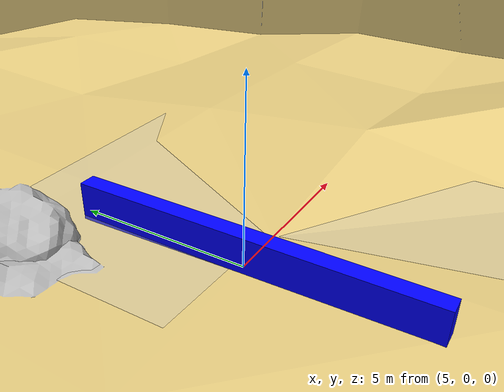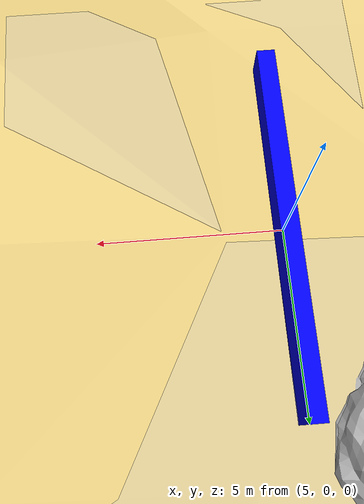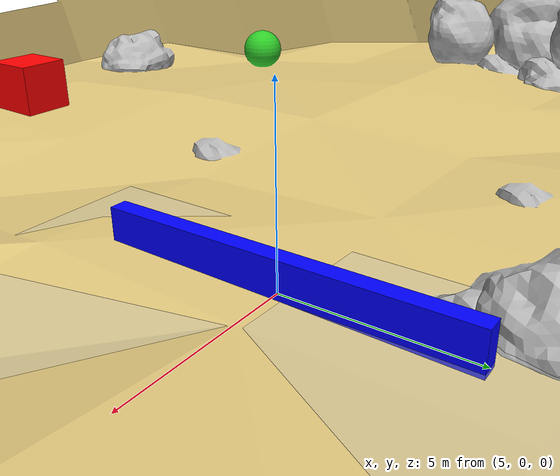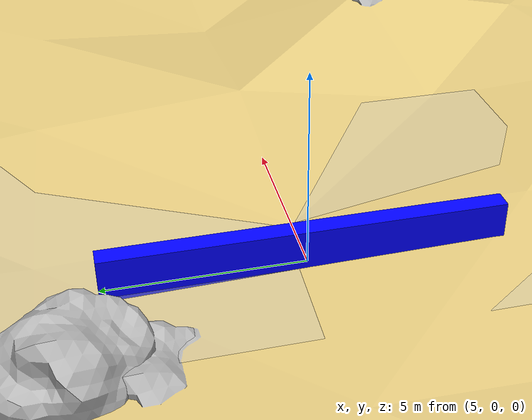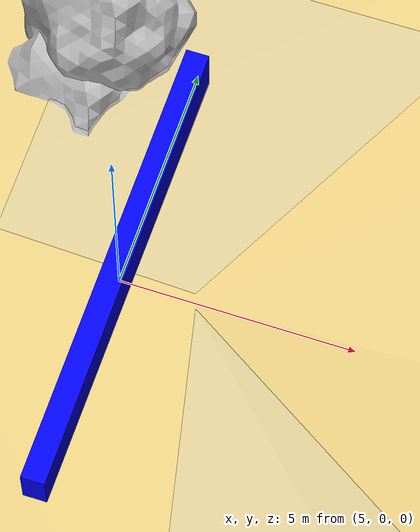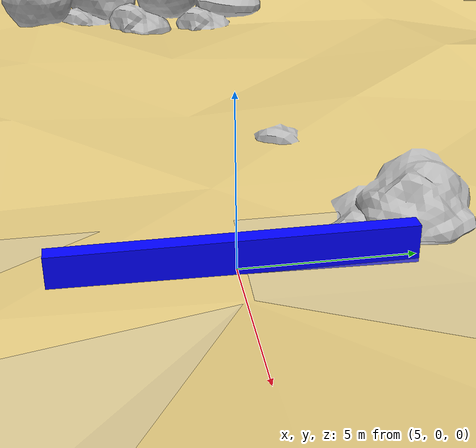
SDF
<?xml version="1.0" ?>
    <!-- Defines the root element with SDF version 1.6 -->
<sdf version="1.6">
    <!-- Starts the world definition named 'world_demo' -->
  <world name="world_demo">
    <!-- Configures the physics engine using ODE with specified settings -->
    <physics name="1ms" type="ode">
    <!-- - Sets the simulation step size to 0.001 seconds -->
      <max_step_size>0.001</max_step_size>
    <!-- - Configures the simulation to run at real-time speed -->
      <real_time_factor>1.0</real_time_factor>
    </physics>
    <plugin
      filename="gz-sim-physics-system"
      name="gz::sim::systems::Physics">
    </plugin>
    <plugin
      filename="gz-sim-user-commands-system"
      name="gz::sim::systems::UserCommands">
    </plugin>
    <plugin
      filename="gz-sim-scene-broadcaster-system"
      name="gz::sim::systems::SceneBroadcaster">
    </plugin>
    <plugin
      filename="gz-sim-sensors-system"
      name="gz::sim::systems::Sensors">
    <!-- - Specifies the rendering engine as OGRE2 for the sensors plugin -->
      <render_engine>ogre2</render_engine>
    </plugin>
    <plugin filename="gz-sim-imu-system"
        name="gz::sim::systems::Imu">
    </plugin>

    <!--light-->
    <!-- Adds a light source of type directional -->
    <light type="directional" name="sun">
    <!-- - Enables or disables shadow casting -->
      <cast_shadows>true</cast_shadows>
    <!-- - Defines the position and orientation of the light in the world -->
      <pose>0 0 10 0 0 0</pose>
    <!-- - Sets the light's diffuse color and intensity -->
      <diffuse>0.8 0.8 0.8 1</diffuse>
    <!-- - Sets the light's specular color and intensity -->
      <specular>0.2 0.2 0.2 1</specular>
      <attenuation>
        <range>1000</range>
        <constant>0.9</constant>
        <linear>0.01</linear>
        <quadratic>0.001</quadratic>
      </attenuation>
      <direction>-0.5 0.1 -0.9</direction>
    </light>

    <model name="ground_plane">
      <static>true</static>
      <link name="link">
        <collision name="collision">
          <geometry>
            <plane>
              <normal>0 0 1</normal>
              <size>100 100</size>
            </plane>
          </geometry>
        </collision>
        <visual name="visual">
          <geometry>
            <plane>
              <normal>0 0 1</normal>
              <size>100 100</size>
            </plane>
          </geometry>
          <material>
            <ambient>0.8 0.8 0.8 1</ambient>
    <!-- - Sets the light's diffuse color and intensity -->
            <diffuse>0.8 0.8 0.8 1</diffuse>
    <!-- - Sets the light's specular color and intensity -->
            <specular>0.8 0.8 0.8 1</specular>
          </material>
        </visual>
      </link>
    </model>

    <model name="sandy_terrain">
      <static>true</static>
      <link name="link">
        <visual name="visual">
          <geometry>
            <mesh>
              <uri>file:///home/turtle_on_land/gazebo_worlds/SANDY_TERRAINII.dae</uri>
            </mesh>
          </geometry>
        </visual>
        <collision name="collision">
          <geometry>
            <mesh>
              <uri>file:///home/turtle_on_land/gazebo_worlds/SANDY_TERRAINII.dae</uri>
            </mesh>
          </geometry>
        </collision>
      </link>
    </model>

    <model name='wall'>
            <static>true</static>
    <!-- - Defines the position and orientation of the light in the world -->
            <pose>5 0 0 0 0 0</pose><!--pose relative to the world-->
            <link name='box'>
                <pose/>
                <inertial> <!--inertial properties of the link mass, inertia matix-->
                    <mass>1.14395</mass>
                    <inertia>
                        <ixx>9.532917</ixx>
                        <ixy>0</ixy>
                        <ixz>0</ixz>
                        <iyy>0.023832</iyy>
                        <iyz>0</iyz>
                        <izz>9.556749</izz>
                    </inertia>
                </inertial>
                <visual name='visual'>
                    <geometry>
                        <box>
                            <size>0.5 10.0 2.0</size>
                        </box>
                    </geometry>
                    <!--let's add color to our link-->
                    <material>
                        <ambient>0.0 0.0 1.0 1</ambient>
    <!-- - Sets the light's diffuse color and intensity -->
                        <diffuse>0.0 0.0 1.0 1</diffuse>
    <!-- - Sets the light's specular color and intensity -->
                        <specular>0.0 0.0 1.0 1</specular>
                    </material>
                </visual>
                <collision name='collision'> <!--todo: describe why we need the collision-->
                    <geometry>
                        <box>
                            <size>0.5 10.0 2.0</size>
                        </box>
                    </geometry>
                </collision>
                <sensor name='sensor_contact' type='contact'>
                    <contact>
                        <collision>collision</collision>
                    </contact>
                </sensor>
            </link>
        </model>
    <!-- Ends the world definition -->
  </world>
</sdf>
